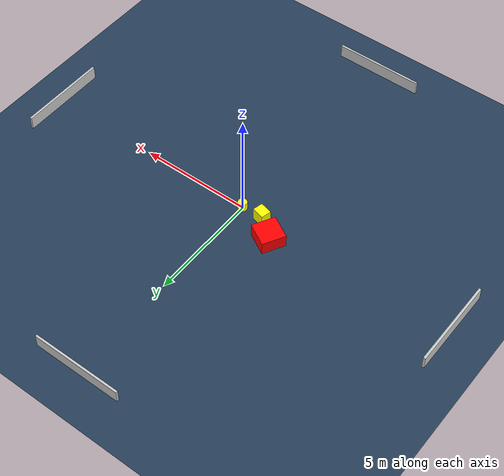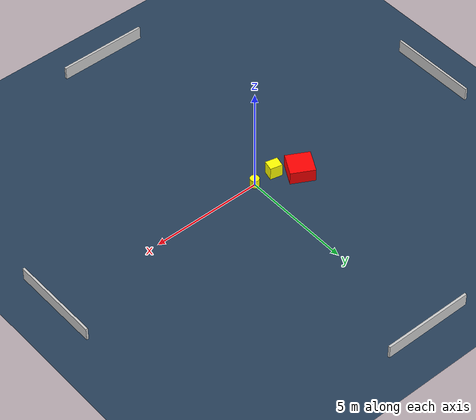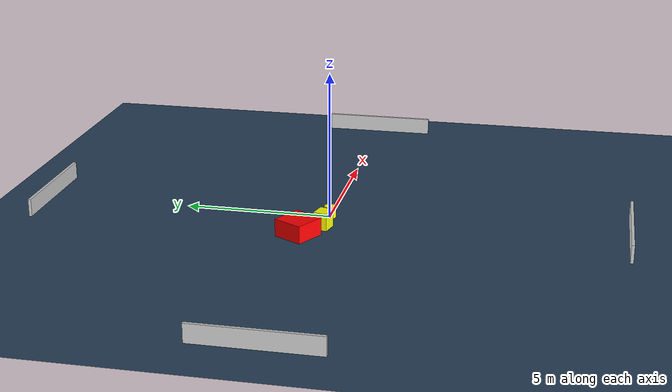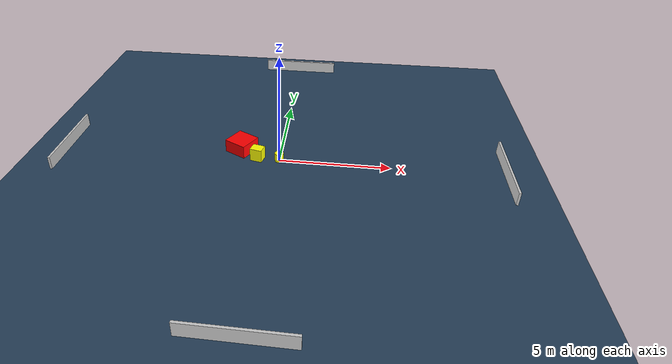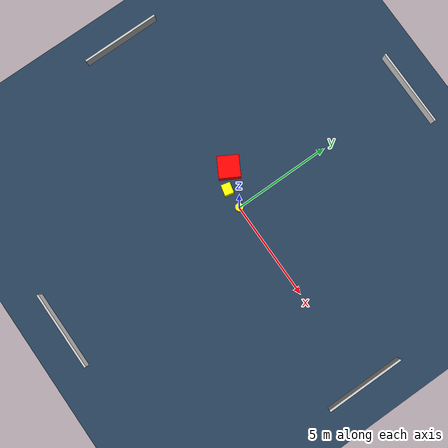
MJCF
<?xml version="1.0" ?>
<mujoco model="generated_environment">
  <option timestep="0.01" integrator="RK4" cone="elliptic"/>
  <default>
    <geom density="1"/>
  </default>
  <asset>
    <texture builtin="gradient" height="3072" name="skybox" rgb1="0.3 0.5 0.7" rgb2="0 0 0" type="skybox" width="512"/>
    <texture builtin="checker" height="300" name="groundplane" rgb1="0.2 0.3 0.4" rgb2="0.1 0.2 0.3" type="2d" width="300"/>
    <material name="groundplane" reflectance="0.2" texrepeat="5 5" texture="groundplane"/>
  </asset>
  <worldbody>
    <light dir="0 0 -1" directional="true" pos="0 0 1.5"/>
    <geom condim="3" friction="0.5 0.005 0.001" material="groundplane" name="floor" pos="0 0 0" size="0 0 0.05" type="plane"/>
    <body name="walls">
      <geom name="wall_1" condim="4" pos="-10.0 0.0 0.3" rgba="0.800000011920929 0.800000011920929 0.800000011920929 1.0" size="0.05 2.0 0.3" type="box"/>
      <geom name="wall_2" condim="4" pos="10.0 0.0 0.3" rgba="0.800000011920929 0.800000011920929 0.800000011920929 1.0" size="0.05 2.0 0.3" type="box"/>
      <geom name="wall_3" condim="4" pos="0.0 -10.0 0.3" rgba="0.800000011920929 0.800000011920929 0.800000011920929 1.0" size="2.0 0.05 0.3" type="box"/>
      <geom name="wall_4" condim="4" pos="0.0 10.0 0.3" rgba="0.800000011920929 0.800000011920929 0.800000011920929 1.0" size="2.0 0.05 0.3" type="box"/>
    </body>
    <body name="robot">
      <joint name="joint_x" type="slide" pos="0 0 0" axis="1 0 0"/>
      <joint name="joint_y" type="slide" pos="0 0 0" axis="0 1 0"/>
      <geom name="robot" type="cylinder" pos="0.0 0.0 0.2" size="0.2 0.2 0.0" mass="5.0" friction="1.0 0.005 0.0001" condim="4" rgba="1.0 1.0 0.0 1.0"/>
    </body>
    <body name="obstacle_1_movable">
      <geom name="obstacle_1_movable" condim="4" pos="-1.0041370714197797 0.01981417352640436 0.3" euler="0 0 256.71322080533275" friction="0.0 0.005 0.001" rgba="1.0 1.0 0.0 1.0" size="0.23237212392916964 0.27599232924912165 0.3" type="box" mass="0.1"/>
      <joint type="free"/>
    </body>
    <body name="obstacle_2_static">
      <geom name="obstacle_2_static" condim="4" pos="-1.844671239140633 0.6853424748383007 0.3" euler="0 0 60.983395758625306" friction="0.0 0.005 0.001" rgba="1.0 0.0 0.0 1.0" size="0.5334173767566266 0.5422024352116698 0.3" type="box"/>
    </body>
  </worldbody>
  <actuator>
    <motor name="actuator_x" joint="joint_x" gear="1" ctrlrange="-1 1"/>
    <motor name="actuator_y" joint="joint_y" gear="1" ctrlrange="-1 1"/>
  </actuator>
</mujoco>
